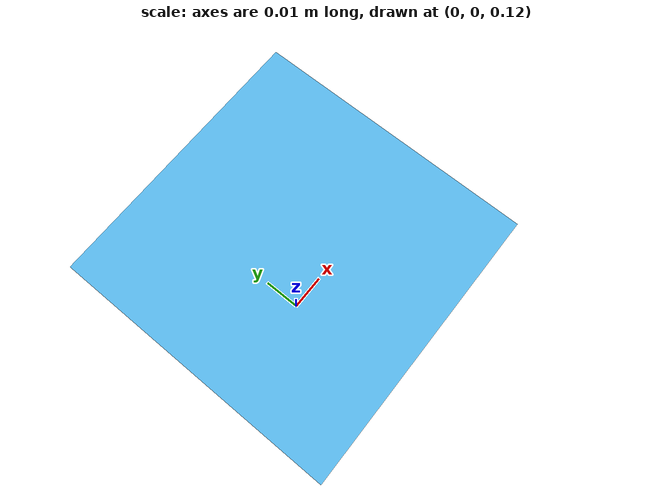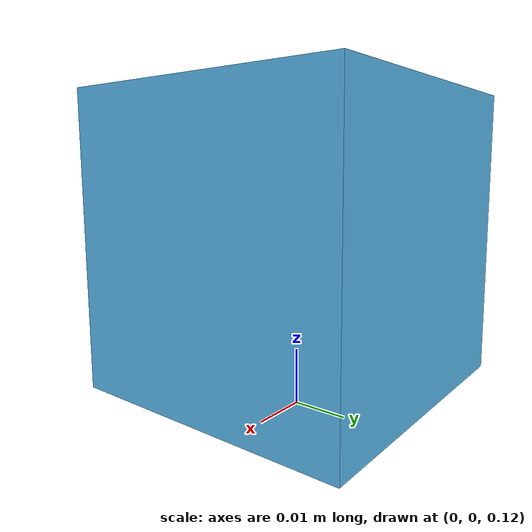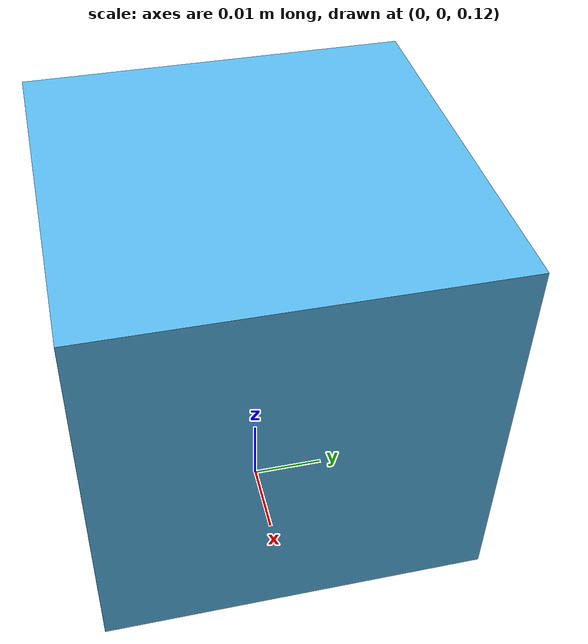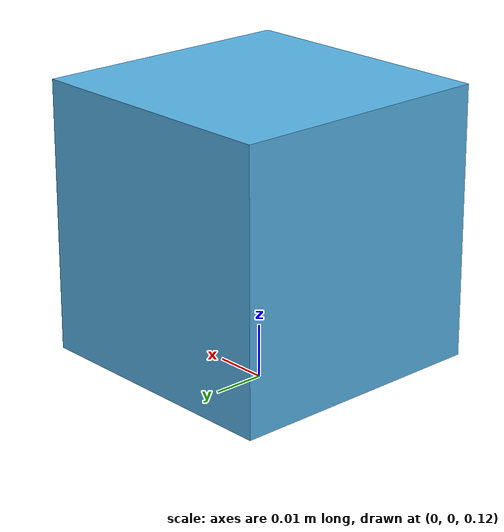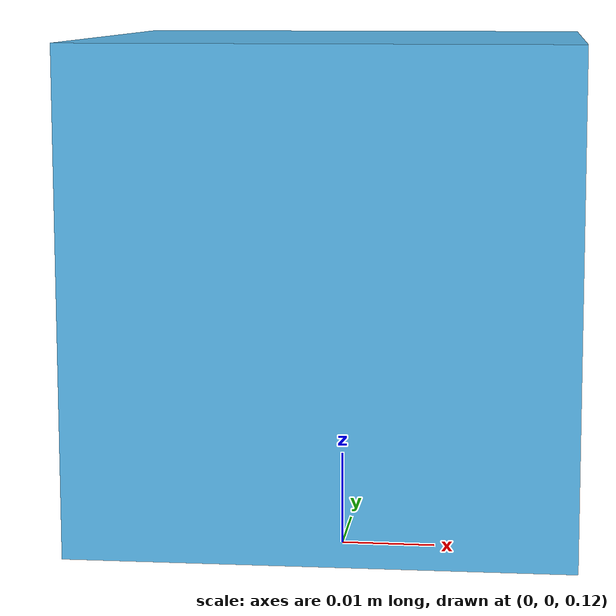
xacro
<?xml version="1.0"?>
<robot name="top_down_camera" xmlns:xacro="http://www.ros.org/wiki/xacro" >

    <xacro:property name="camera_link_size" value="0.05" /> <!-- Size of square 'camera' box -->
    <!-- Camera -->

    <link name="camera base"></link>

    <joint name="my_joint" type="fixed">
        <origin xyz="0 0 0.15" rpy="0 1.57 -1.57"/>
        <parent link="camera base"/>
        <child link="camera_link"/>
    </joint>

    <link name="camera_link">
        <collision>
            <origin xyz="0 0 0" rpy="0 0 0"/>
            <geometry>
                <box size="${camera_link_size} ${camera_link_size} ${camera_link_size}"/>
            </geometry>
        </collision>

        <visual>
            <origin xyz="0 0 0" rpy="0 0 0"/>
            <geometry>
                <box size="${camera_link_size} ${camera_link_size} ${camera_link_size}"/>
            </geometry>
        </visual>

        <inertial>
            <mass value="1e-5" />
            <origin xyz="0 0 0" rpy="0 0 0"/>
            <inertia ixx="1e-9" ixy="0" ixz="0" iyy="1e-9" iyz="0" izz="1e-9" />
        </inertial>
    </link>

    <gazebo reference="camera_link">
        <gravity>0</gravity>
        <static>true</static>
        <sensor type="camera" name="camera1">
        <update_rate>30.0</update_rate>
        <camera name="head">
            <horizontal_fov>1</horizontal_fov>
            <image>
            <width>800</width>
            <height>800</height>
            <format>R8G8B8</format>
            </image>
            <clip>
            <near>0.001</near>
            <far>10</far>
            </clip>SA
            <noise>
                <type>gaussian</type>
                <mean>0.0</mean>
                <stddev>0.0</stddev>
            </noise>
        </camera>
        <plugin name="camera_controller" filename="libgazebo_ros_camera.so">
            <alwaysOn>true</alwaysOn>
            <updateRate>0.0</updateRate>
            <cameraName>microbot/camera1</cameraName>
            <imageTopicName>image_raw</imageTopicName>
            <cameraInfoTopicName>camera_info</cameraInfoTopicName>
            <frameName>camera_link</frameName>
            <hackBaseline>0.07</hackBaseline>
            <distortionK1>0.0</distortionK1>
            <distortionK2>0.0</distortionK2>
            <distortionK3>0.0</distortionK3>
            <distortionT1>0.0</distortionT1>
            <distortionT2>0.0</distortionT2>
        </plugin>
        </sensor>
    </gazebo>

</robot>
